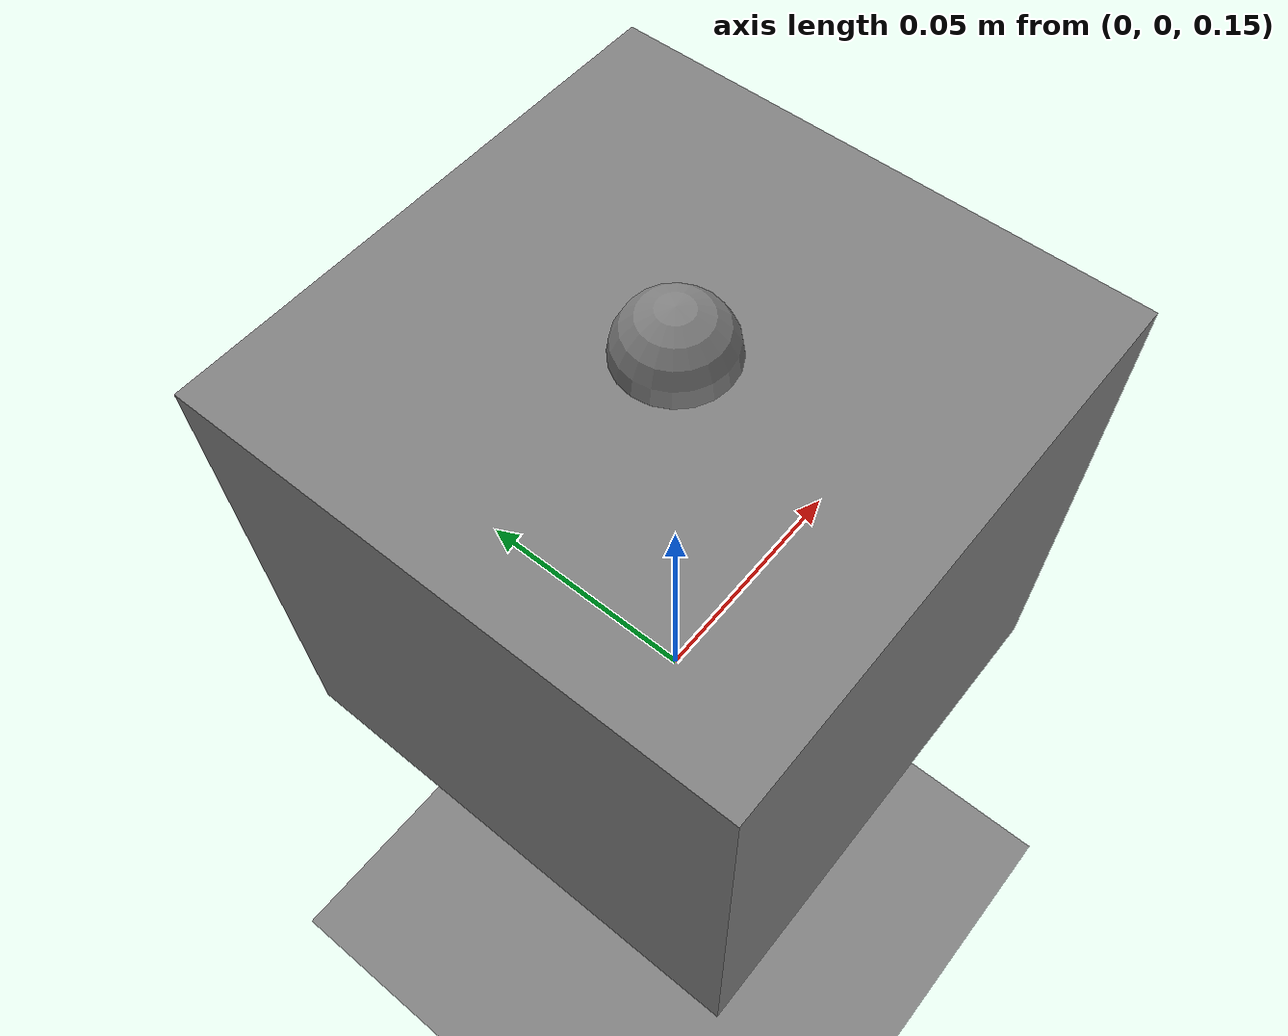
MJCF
<mujoco model="sensor_body">
  <compiler angle="radian"/>

  <option timestep="0.002" gravity="0 0 -9.81"/>

  <worldbody>
    <light name="top_light" pos="0 0 2"/>
    <geom name="floor" type="plane" size="1 1 0.01"/>

    <body name="sensor_body" pos="0 0 0.2">
      <joint name="sensor_free_joint" type="free"/>
      <geom name="sensor_geom" type="box" size="0.05 0.05 0.05" mass="0.1"/>
      <site name="imu_site" pos="0 0 0.05" size="0.01"/>
    </body>
  </worldbody>

  <sensor>
    <accelerometer name="imu_accelerometer" site="imu_site"/>
    <gyro name="imu_gyro" site="imu_site"/>
    <framepos name="imu_position" objtype="site" objname="imu_site"/>
  </sensor>
</mujoco>
